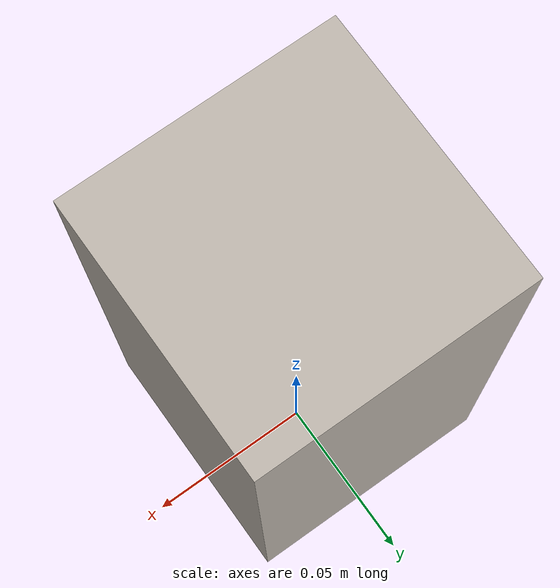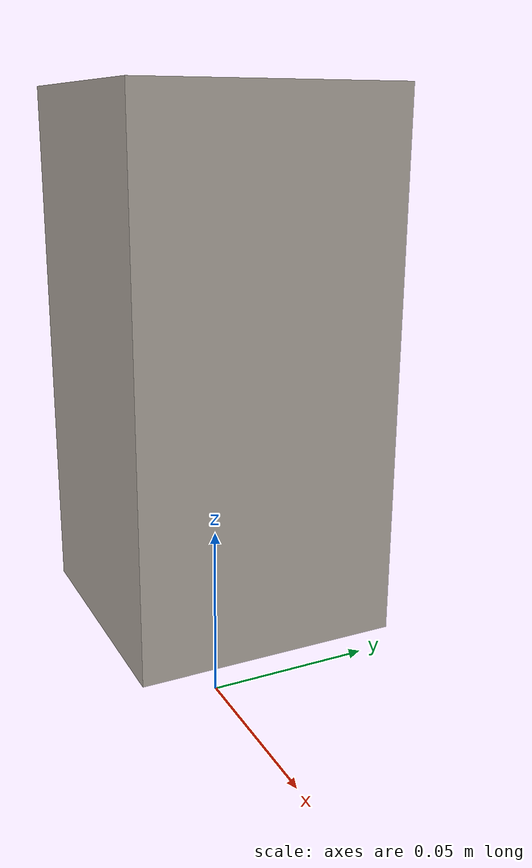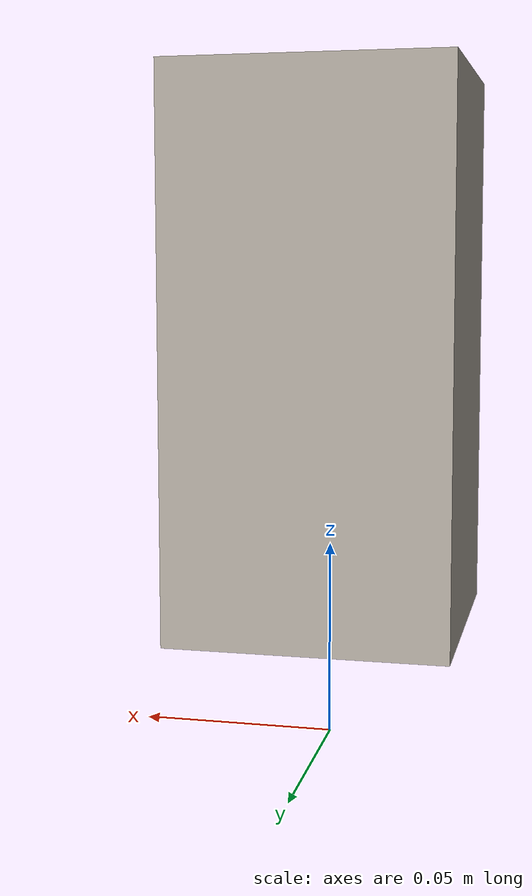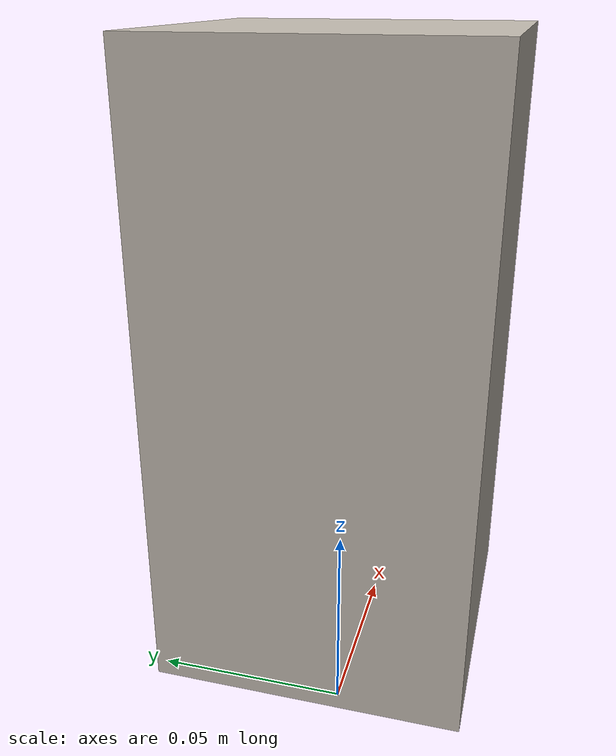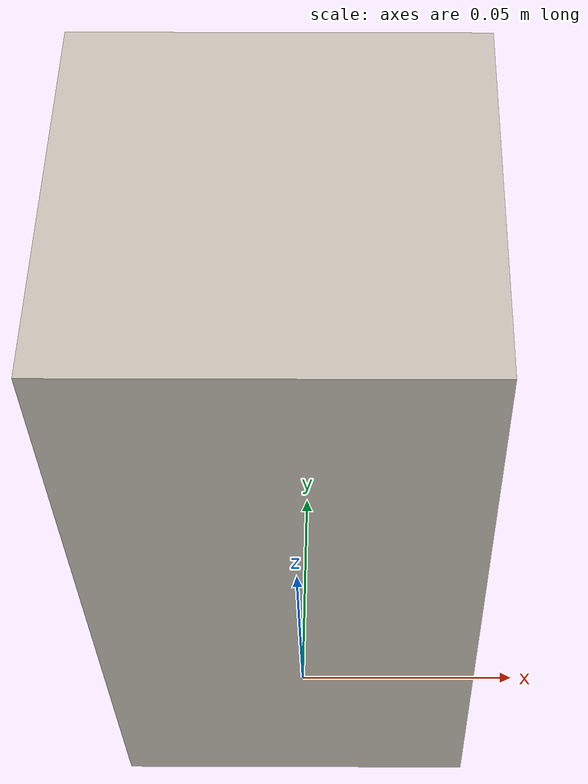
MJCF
<mujoco>
  <asset>
    <texture name="cube" type="cube"
             fileup="reorientation_cube_textures/fileup.png"
             fileback="reorientation_cube_textures/fileback.png"
             filedown="reorientation_cube_textures/filedown.png"
             filefront="reorientation_cube_textures/filefront.png"
             fileleft="reorientation_cube_textures/fileleft.png"
             fileright="reorientation_cube_textures/fileright.png"/>
    <material name="cube" texture="cube"/>
    <texture name="graycube" type="cube"
             fileup="reorientation_cube_textures/grayup.png"
             fileback="reorientation_cube_textures/grayback.png"
             filedown="reorientation_cube_textures/graydown.png"
             filefront="reorientation_cube_textures/grayfront.png"
             fileleft="reorientation_cube_textures/grayleft.png"
             fileright="reorientation_cube_textures/grayright.png"/>
    <material name="graycube" texture="graycube"/>
  </asset>
  <worldbody>
    <light pos="0 0 1"/>
    <body name="cube" pos="0 0 0.1" quat="1 0 0 0">
      <freejoint name="cube_freejoint"/>
      <geom name="cube" type="box" size=".035 .035 .07" mass=".108" material="cube" friction="0.3 0.05 0.01"
            conaffinity="2"/>
      <site name="cube"/>
    </body>
  </worldbody>
</mujoco>
